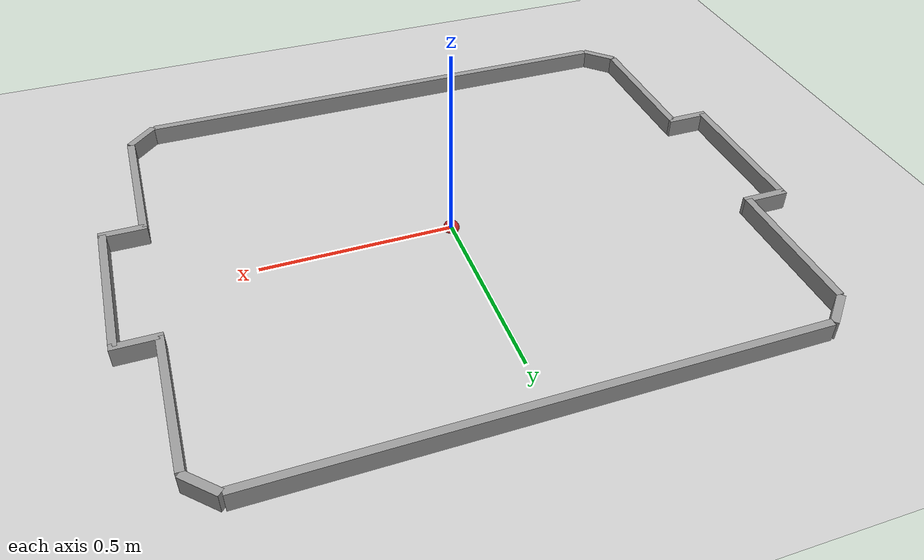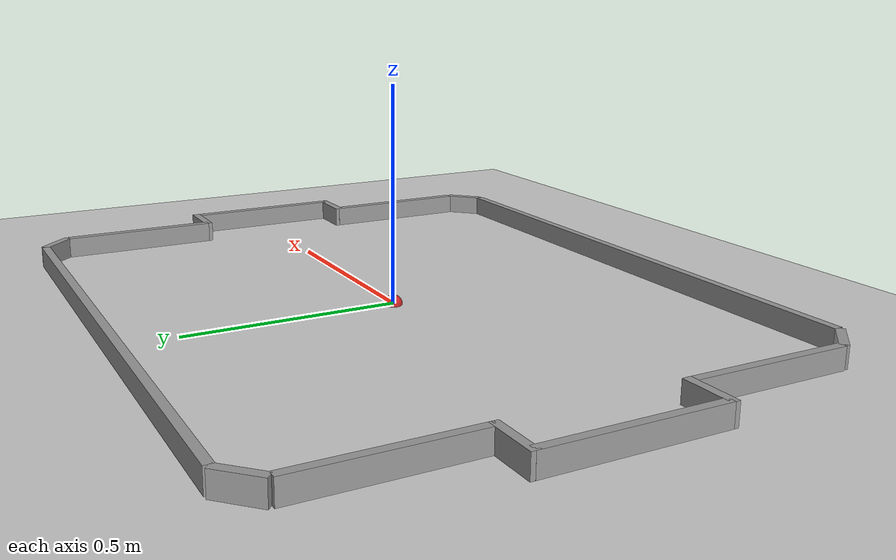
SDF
<?xml version="1.0"?>
<sdf version='1.6'>
  <world name='vsss_environment'>

    <!-- Fonte de luz -->
    <light name='sun' type='directional'>
      <cast_shadows>0</cast_shadows>
      <pose frame=''>0 0 10 0 -0 0</pose>
      <diffuse>0.8 0.8 0.8 1</diffuse>
      <specular>0.2 0.2 0.2 1</specular>

      <attenuation>
        <range>1000</range>
        <constant>0.9</constant>
        <linear>0.01</linear>
        <quadratic>0.001</quadratic>
      </attenuation>

      <direction>-0.5 0.1 -0.9</direction>
    </light>

    <!-- Interface -->
    <gui fullscreen='0'>
      <camera name='user_camera'>
        <pose frame=''>-0 -1.3 1.7 0 0.94 1.57</pose>
        <view_controller>orbit</view_controller>
        <projection_type>perspective</projection_type>
      </camera>
    </gui>

    <!-- Terreno plano -->
    <model name='ground_plane'>
      <static>1</static>
      <link name='link'>
        <collision name='collision'>
          <geometry>
            <plane>
              <normal>0 0 1</normal>
              <size>100 100</size>
            </plane>
          </geometry>
          <surface>
            <friction>
              <ode>
                <!-- A circuferencia do robo não teve alteração quando o mu do ground foi alterado de 1 para 0.375 -->
                <mu>1</mu>
                <mu2>1</mu2>
                <!-- A circunferencia não teve alteração com mu 100 e 50 baseado no simulador chines -->
              </ode>
              <torsional>
                <ode/>
              </torsional>
            </friction>
            <contact>
              <ode/>
            </contact>
            <bounce/>
          </surface>
          <max_contacts>10</max_contacts>
        </collision>
        <visual name='visual'>
          <cast_shadows>0</cast_shadows>
          <geometry>
            <plane>
              <normal>0 0 1</normal>
              <size>100 100</size>
            </plane>
          </geometry>
          <material>
            <script>
              <uri>file://media/materials/scripts/gazebo.material</uri>
              <name>Gazebo/Gray</name>
            </script>
          </material>
        </visual>
        <self_collide>0</self_collide>
        <enable_wind>0</enable_wind>
        <kinematic>0</kinematic>
      </link>
    </model>

    <gravity>0 0 -9.8</gravity>
    <magnetic_field>6e-06 2.3e-05 -4.2e-05</magnetic_field>
    <atmosphere type='adiabatic'/>

    <physics name='default_physics' default='0' type='ode'>
      <max_step_size>0.005</max_step_size>
      <real_time_factor>1</real_time_factor>
      <real_time_update_rate>200</real_time_update_rate>
    </physics>

    <scene>
      <ambient>0.4 0.4 0.4 1</ambient>
      <background>0.7 0.7 0.7 1</background>
      <shadows>0</shadows>
    </scene>

    <spherical_coordinates>
      <surface_model>EARTH_WGS84</surface_model>
      <latitude_deg>0</latitude_deg>
      <longitude_deg>0</longitude_deg>
      <elevation>0</elevation>
      <heading_deg>0</heading_deg>
    </spherical_coordinates>

    <!-- RoboCup 2015 MSL Field -->

    <!-- IEEE Very Small Size Soccer Field -->
    <include>
        <pose>0 0 0 0 0 0</pose>
        <uri>model://vsss_field</uri>
        <name>field_walls</name>
        <static>true</static>
    </include>

    <!-- IEEE Very Small Size Soccer Ball -->
    <include>
        <pose>0 0 0 0 0 0</pose>
        <uri>model://vsss_ball</uri>
        <name>ball</name>
        <static>false</static>
    </include>

  </world>
</sdf>

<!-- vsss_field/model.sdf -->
<sdf version='1.6'>
  <model name='field_walls'>
    <link name='Wall_2'>
      <pose frame=''>-0.8 -0.2 0 0 -0 0</pose>
      <self_collide>0</self_collide>
      <enable_wind>0</enable_wind>
      <kinematic>0</kinematic>
      <gravity>1</gravity>
      <inertial>
        <mass>1</mass>
        <pose frame=''>0 0 0 0 -0 0</pose>
        <inertia>
          <ixx>1</ixx>
          <ixy>0</ixy>
          <ixz>0</ixz>
          <iyy>1</iyy>
          <iyz>0</iyz>
          <izz>1</izz>
        </inertia>
      </inertial>
      <visual name='Wall_2_Visual'>
        <pose frame=''>0 0 0.025 0 -0 0</pose>
        <geometry>
          <box>
            <size>0.119741 0.02 0.05</size>
          </box>
        </geometry>
        <material>
          <script>
            <uri>file://media/materials/scripts/gazebo.material</uri>
            <name>Gazebo/Grey</name>
          </script>
          <ambient>1 1 1 1</ambient>
          <shader type='vertex'>
            <normal_map>__default__</normal_map>
          </shader>
          <diffuse>0.7 0.7 0.7 1</diffuse>
          <specular>0.01 0.01 0.01 1</specular>
          <emissive>0 0 0 1</emissive>
        </material>
        <meta>
          <layer>0</layer>
        </meta>
        <transparency>0</transparency>
        <cast_shadows>1</cast_shadows>
      </visual>
      <collision name='Wall_2_Collision'>
        <laser_retro>0</laser_retro>
        <max_contacts>10</max_contacts>
        <pose frame=''>0 0 0.025 0 -0 0</pose>
        <geometry>
          <box>
            <size>0.119741 0.02 0.05</size>
          </box>
        </geometry>
        <surface>
          <friction>
            <ode>
              <mu>0.375</mu>
              <mu2>0.375</mu2>
              <fdir1>0 0 0</fdir1>
              <slip1>0</slip1>
              <slip2>0</slip2>
            </ode>
            <torsional>
              <coefficient>1</coefficient>
              <patch_radius>0</patch_radius>
              <surface_radius>0</surface_radius>
              <use_patch_radius>1</use_patch_radius>
              <ode>
                <slip>0</slip>
              </ode>
            </torsional>
          </friction>
          <bounce>
            <restitution_coefficient>0</restitution_coefficient>
            <threshold>1e+06</threshold>
          </bounce>
          <contact>
            <collide_without_contact>0</collide_without_contact>
            <collide_without_contact_bitmask>1</collide_without_contact_bitmask>
            <collide_bitmask>1</collide_bitmask>
            <ode>
              <soft_cfm>0</soft_cfm>
              <soft_erp>0.2</soft_erp>
              <kp>1e+13</kp>
              <kd>1</kd>
              <max_vel>0.01</max_vel>
              <min_depth>0</min_depth>
            </ode>
            <bullet>
              <split_impulse>1</split_impulse>
              <split_impulse_penetration_threshold>-0.01</split_impulse_penetration_threshold>
              <soft_cfm>0</soft_cfm>
              <soft_erp>0.2</soft_erp>
              <kp>1e+13</kp>
              <kd>1</kd>
            </bullet>
          </contact>
        </surface>
      </collision>
    </link>
    <link name='Wall_1'>
      <pose frame=''>-0.85 0 0 0 0 -1.5708</pose>
      <self_collide>0</self_collide>
      <enable_wind>0</enable_wind>
      <kinematic>0</kinematic>
      <gravity>1</gravity>
      <inertial>
        <mass>1</mass>
        <pose frame=''>0 0 0 0 -0 0</pose>
        <inertia>
          <ixx>1</ixx>
          <ixy>0</ixy>
          <ixz>0</ixz>
          <iyy>1</iyy>
          <iyz>0</iyz>
          <izz>1</izz>
        </inertia>
      </inertial>
      <visual name='Wall_1_Visual'>
        <pose frame=''>0 0 0.025 0 -0 0</pose>
        <geometry>
          <box>
            <size>0.4 0.02 0.05</size>
          </box>
        </geometry>
        <material>
          <script>
            <uri>file://media/materials/scripts/gazebo.material</uri>
            <name>Gazebo/Grey</name>
          </script>
          <ambient>1 1 1 1</ambient>
          <shader type='vertex'>
            <normal_map>__default__</normal_map>
          </shader>
          <diffuse>0.7 0.7 0.7 1</diffuse>
          <specular>0.01 0.01 0.01 1</specular>
          <emissive>0 0 0 1</emissive>
        </material>
        <meta>
          <layer>0</layer>
        </meta>
        <transparency>0</transparency>
        <cast_shadows>1</cast_shadows>
      </visual>
      <collision name='Wall_1_Collision'>
        <laser_retro>0</laser_retro>
        <max_contacts>10</max_contacts>
        <pose frame=''>0 0 0.025 0 -0 0</pose>
        <geometry>
          <box>
            <size>0.4 0.02 0.05</size>
          </box>
        </geometry>
        <surface>
          <friction>
            <ode>
              <mu>0.375</mu>
              <mu2>0.375</mu2>
              <fdir1>0 0 0</fdir1>
              <slip1>0</slip1>
              <slip2>0</slip2>
            </ode>
            <torsional>
              <coefficient>1</coefficient>
              <patch_radius>0</patch_radius>
              <surface_radius>0</surface_radius>
              <use_patch_radius>1</use_patch_radius>
              <ode>
                <slip>0</slip>
              </ode>
            </torsional>
          </friction>
          <bounce>
            <restitution_coefficient>0</restitution_coefficient>
            <threshold>1e+06</threshold>
          </bounce>
          <contact>
            <collide_without_contact>0</collide_without_contact>
            <collide_without_contact_bitmask>1</collide_without_contact_bitmask>
            <collide_bitmask>1</collide_bitmask>
            <ode>
              <soft_cfm>0</soft_cfm>
              <soft_erp>0.2</soft_erp>
              <kp>1e+13</kp>
              <kd>1</kd>
              <max_vel>0.01</max_vel>
              <min_depth>0</min_depth>
            </ode>
            <bullet>
              <split_impulse>1</split_impulse>
              <split_impulse_penetration_threshold>-0.01</split_impulse_penetration_threshold>
              <soft_cfm>0</soft_cfm>
              <soft_erp>0.2</soft_erp>
              <kp>1e+13</kp>
              <kd>1</kd>
            </bullet>
          </contact>
        </surface>
      </collision>
    </link>
    <link name='Wall_10'>
      <pose frame=''>0.8 0.2 0 0 -0 3.14159</pose>
      <self_collide>0</self_collide>
      <enable_wind>0</enable_wind>
      <kinematic>0</kinematic>
      <gravity>1</gravity>
      <inertial>
        <mass>1</mass>
        <pose frame=''>0 0 0 0 -0 0</pose>
        <inertia>
          <ixx>1</ixx>
          <ixy>0</ixy>
          <ixz>0</ixz>
          <iyy>1</iyy>
          <iyz>0</iyz>
          <izz>1</izz>
        </inertia>
      </inertial>
      <visual name='Wall_10_Visual'>
        <pose frame=''>0 0 0.025 0 -0 0</pose>
        <geometry>
          <box>
            <size>0.119741 0.02 0.05</size>
          </box>
        </geometry>
        <material>
          <script>
            <uri>file://media/materials/scripts/gazebo.material</uri>
            <name>Gazebo/Grey</name>
          </script>
          <ambient>1 1 1 1</ambient>
          <shader type='vertex'>
            <normal_map>__default__</normal_map>
          </shader>
          <diffuse>0.7 0.7 0.7 1</diffuse>
          <specular>0.01 0.01 0.01 1</specular>
          <emissive>0 0 0 1</emissive>
        </material>
        <meta>
          <layer>0</layer>
        </meta>
        <transparency>0</transparency>
        <cast_shadows>1</cast_shadows>
      </visual>
      <collision name='Wall_10_Collision'>
        <laser_retro>0</laser_retro>
        <max_contacts>10</max_contacts>
        <pose frame=''>0 0 0.025 0 -0 0</pose>
        <geometry>
          <box>
            <size>0.119741 0.02 0.05</size>
          </box>
        </geometry>
        <surface>
          <friction>
            <ode>
              <mu>0.375</mu>
              <mu2>0.375</mu2>
              <fdir1>0 0 0</fdir1>
              <slip1>0</slip1>
              <slip2>0</slip2>
            </ode>
            <torsional>
              <coefficient>1</coefficient>
              <patch_radius>0</patch_radius>
              <surface_radius>0</surface_radius>
              <use_patch_radius>1</use_patch_radius>
              <ode>
                <slip>0</slip>
              </ode>
            </torsional>
          </friction>
          <bounce>
            <restitution_coefficient>0</restitution_coefficient>
            <threshold>1e+06</threshold>
          </bounce>
          <contact>
            <collide_without_contact>0</collide_without_contact>
            <collide_without_contact_bitmask>1</collide_without_contact_bitmask>
            <collide_bitmask>1</collide_bitmask>
            <ode>
              <soft_cfm>0</soft_cfm>
              <soft_erp>0.2</soft_erp>
              <kp>1e+13</kp>
              <kd>1</kd>
              <max_vel>0.01</max_vel>
              <min_depth>0</min_depth>
            </ode>
            <bullet>
              <split_impulse>1</split_impulse>
              <split_impulse_penetration_threshold>-0.01</split_impulse_penetration_threshold>
              <soft_cfm>0</soft_cfm>
              <soft_erp>0.2</soft_erp>
              <kp>1e+13</kp>
              <kd>1</kd>
            </bullet>
          </contact>
        </surface>
      </collision>
    </link>
    <link name='Wall_11'>
      <pose frame=''>0.75 0.39 0 0 -0 1.5708</pose>
      <self_collide>0</self_collide>
      <enable_wind>0</enable_wind>
      <kinematic>0</kinematic>
      <gravity>1</gravity>
      <inertial>
        <mass>1</mass>
        <pose frame=''>0 0 0 0 -0 0</pose>
        <inertia>
          <ixx>1</ixx>
          <ixy>0</ixy>
          <ixz>0</ixz>
          <iyy>1</iyy>
          <iyz>0</iyz>
          <izz>1</izz>
        </inertia>
      </inertial>
      <visual name='Wall_11_Visual'>
        <pose frame=''>0 0 0.025 0 -0 0</pose>
        <geometry>
          <box>
            <size>0.38 0.02 0.05</size>
          </box>
        </geometry>
        <material>
          <script>
            <uri>file://media/materials/scripts/gazebo.material</uri>
            <name>Gazebo/Grey</name>
          </script>
          <ambient>1 1 1 1</ambient>
          <shader type='vertex'>
            <normal_map>__default__</normal_map>
          </shader>
          <diffuse>0.7 0.7 0.7 1</diffuse>
          <specular>0.01 0.01 0.01 1</specular>
          <emissive>0 0 0 1</emissive>
        </material>
        <meta>
          <layer>0</layer>
        </meta>
        <transparency>0</transparency>
        <cast_shadows>1</cast_shadows>
      </visual>
      <collision name='Wall_11_Collision'>
        <laser_retro>0</laser_retro>
        <max_contacts>10</max_contacts>
        <pose frame=''>0 0 0.025 0 -0 0</pose>
        <geometry>
          <box>
            <size>0.38 0.02 0.05</size>
          </box>
        </geometry>
        <surface>
          <friction>
            <ode>
              <mu>0.375</mu>
              <mu2>0.375</mu2>
              <fdir1>0 0 0</fdir1>
              <slip1>0</slip1>
              <slip2>0</slip2>
            </ode>
            <torsional>
              <coefficient>1</coefficient>
              <patch_radius>0</patch_radius>
              <surface_radius>0</surface_radius>
              <use_patch_radius>1</use_patch_radius>
              <ode>
                <slip>0</slip>
              </ode>
            </torsional>
          </friction>
          <bounce>
            <restitution_coefficient>0</restitution_coefficient>
            <threshold>1e+06</threshold>
          </bounce>
          <contact>
            <collide_without_contact>0</collide_without_contact>
            <collide_without_contact_bitmask>1</collide_without_contact_bitmask>
            <collide_bitmask>1</collide_bitmask>
            <ode>
              <soft_cfm>0</soft_cfm>
              <soft_erp>0.2</soft_erp>
              <kp>1e+13</kp>
              <kd>1</kd>
              <max_vel>0.01</max_vel>
              <min_depth>0</min_depth>
            </ode>
            <bullet>
              <split_impulse>1</split_impulse>
              <split_impulse_penetration_threshold>-0.01</split_impulse_penetration_threshold>
              <soft_cfm>0</soft_cfm>
              <soft_erp>0.2</soft_erp>
              <kp>1e+13</kp>
              <kd>1</kd>
            </bullet>
          </contact>
        </surface>
      </collision>
    </link>
    <link name='Wall_12'>
      <pose frame=''>0.716963 0.616934 0 0 -0 2.35729</pose>
      <self_collide>0</self_collide>
      <enable_wind>0</enable_wind>
      <kinematic>0</kinematic>
      <gravity>1</gravity>
      <inertial>
        <mass>1</mass>
        <pose frame=''>0 0 0 0 -0 0</pose>
        <inertia>
          <ixx>1</ixx>
          <ixy>0</ixy>
          <ixz>0</ixz>
          <iyy>1</iyy>
          <iyz>0</iyz>
          <izz>1</izz>
        </inertia>
      </inertial>
      <visual name='Wall_12_Visual'>
        <pose frame=''>0 0 0.025 0 -0 0</pose>
        <geometry>
          <box>
            <size>0.098995 0.02 0.05</size>
          </box>
        </geometry>
        <material>
          <script>
            <uri>file://media/materials/scripts/gazebo.material</uri>
            <name>Gazebo/Grey</name>
          </script>
          <ambient>1 1 1 1</ambient>
          <shader type='vertex'>
            <normal_map>__default__</normal_map>
          </shader>
          <diffuse>0.7 0.7 0.7 1</diffuse>
          <specular>0.01 0.01 0.01 1</specular>
          <emissive>0 0 0 1</emissive>
        </material>
        <meta>
          <layer>0</layer>
        </meta>
        <transparency>0</transparency>
        <cast_shadows>1</cast_shadows>
      </visual>
      <collision name='Wall_12_Collision'>
        <laser_retro>0</laser_retro>
        <max_contacts>10</max_contacts>
        <pose frame=''>0 0 0.025 0 -0 0</pose>
        <geometry>
          <box>
            <size>0.098995 0.02 0.05</size>
          </box>
        </geometry>
        <surface>
          <friction>
            <ode>
              <mu>0.375</mu>
              <mu2>0.375</mu2>
              <fdir1>0 0 0</fdir1>
              <slip1>0</slip1>
              <slip2>0</slip2>
            </ode>
            <torsional>
              <coefficient>1</coefficient>
              <patch_radius>0</patch_radius>
              <surface_radius>0</surface_radius>
              <use_patch_radius>1</use_patch_radius>
              <ode>
                <slip>0</slip>
              </ode>
            </torsional>
          </friction>
          <bounce>
            <restitution_coefficient>0</restitution_coefficient>
            <threshold>1e+06</threshold>
          </bounce>
          <contact>
            <collide_without_contact>0</collide_without_contact>
            <collide_without_contact_bitmask>1</collide_without_contact_bitmask>
            <collide_bitmask>1</collide_bitmask>
            <ode>
              <soft_cfm>0</soft_cfm>
              <soft_erp>0.2</soft_erp>
              <kp>1e+13</kp>
              <kd>1</kd>
              <max_vel>0.01</max_vel>
              <min_depth>0</min_depth>
            </ode>
            <bullet>
              <split_impulse>1</split_impulse>
              <split_impulse_penetration_threshold>-0.01</split_impulse_penetration_threshold>
              <soft_cfm>0</soft_cfm>
              <soft_erp>0.2</soft_erp>
              <kp>1e+13</kp>
              <kd>1</kd>
            </bullet>
          </contact>
        </surface>
      </collision>
    </link>
    <link name='Wall_13'>
      <pose frame=''>0 0.65 0 0 -0 3.14159</pose>
      <self_collide>0</self_collide>
      <enable_wind>0</enable_wind>
      <kinematic>0</kinematic>
      <gravity>1</gravity>
      <inertial>
        <mass>1</mass>
        <pose frame=''>0 0 0 0 -0 0</pose>
        <inertia>
          <ixx>1</ixx>
          <ixy>0</ixy>
          <ixz>0</ixz>
          <iyy>1</iyy>
          <iyz>0</iyz>
          <izz>1</izz>
        </inertia>
      </inertial>
      <visual name='Wall_13_Visual'>
        <pose frame=''>0 0 0.025 0 -0 0</pose>
        <geometry>
          <box>
            <size>1.36 0.02 0.05</size>
          </box>
        </geometry>
        <material>
          <script>
            <uri>file://media/materials/scripts/gazebo.material</uri>
            <name>Gazebo/Grey</name>
          </script>
          <ambient>1 1 1 1</ambient>
          <shader type='vertex'>
            <normal_map>__default__</normal_map>
          </shader>
          <diffuse>0.7 0.7 0.7 1</diffuse>
          <specular>0.01 0.01 0.01 1</specular>
          <emissive>0 0 0 1</emissive>
        </material>
        <meta>
          <layer>0</layer>
        </meta>
        <transparency>0</transparency>
        <cast_shadows>1</cast_shadows>
      </visual>
      <collision name='Wall_13_Collision'>
        <laser_retro>0</laser_retro>
        <max_contacts>10</max_contacts>
        <pose frame=''>0 0 0.025 0 -0 0</pose>
        <geometry>
          <box>
            <size>1.36 0.02 0.05</size>
          </box>
        </geometry>
        <surface>
          <friction>
            <ode>
              <mu>0.375</mu>
              <mu2>0.375</mu2>
              <fdir1>0 0 0</fdir1>
              <slip1>0</slip1>
              <slip2>0</slip2>
            </ode>
            <torsional>
              <coefficient>1</coefficient>
              <patch_radius>0</patch_radius>
              <surface_radius>0</surface_radius>
              <use_patch_radius>1</use_patch_radius>
              <ode>
                <slip>0</slip>
              </ode>
            </torsional>
          </friction>
          <bounce>
            <restitution_coefficient>0</restitution_coefficient>
            <threshold>1e+06</threshold>
          </bounce>
          <contact>
            <collide_without_contact>0</collide_without_contact>
            <collide_without_contact_bitmask>1</collide_without_contact_bitmask>
            <collide_bitmask>1</collide_bitmask>
            <ode>
              <soft_cfm>0</soft_cfm>
              <soft_erp>0.2</soft_erp>
              <kp>1e+13</kp>
              <kd>1</kd>
              <max_vel>0.01</max_vel>
              <min_depth>0</min_depth>
            </ode>
            <bullet>
              <split_impulse>1</split_impulse>
              <split_impulse_penetration_threshold>-0.01</split_impulse_penetration_threshold>
              <soft_cfm>0</soft_cfm>
              <soft_erp>0.2</soft_erp>
              <kp>1e+13</kp>
              <kd>1</kd>
            </bullet>
          </contact>
        </surface>
      </collision>
    </link>
    <link name='Wall_14'>
      <pose frame=''>-0.716963 0.616934 0 0 0 -2.35729</pose>
      <self_collide>0</self_collide>
      <enable_wind>0</enable_wind>
      <kinematic>0</kinematic>
      <gravity>1</gravity>
      <inertial>
        <mass>1</mass>
        <pose frame=''>0 0 0 0 -0 0</pose>
        <inertia>
          <ixx>1</ixx>
          <ixy>0</ixy>
          <ixz>0</ixz>
          <iyy>1</iyy>
          <iyz>0</iyz>
          <izz>1</izz>
        </inertia>
      </inertial>
      <visual name='Wall_14_Visual'>
        <pose frame=''>0 0 0.025 0 -0 0</pose>
        <geometry>
          <box>
            <size>0.098995 0.02 0.05</size>
          </box>
        </geometry>
        <material>
          <script>
            <uri>file://media/materials/scripts/gazebo.material</uri>
            <name>Gazebo/Grey</name>
          </script>
          <ambient>1 1 1 1</ambient>
          <shader type='vertex'>
            <normal_map>__default__</normal_map>
          </shader>
          <diffuse>0.7 0.7 0.7 1</diffuse>
          <specular>0.01 0.01 0.01 1</specular>
          <emissive>0 0 0 1</emissive>
        </material>
        <meta>
          <layer>0</layer>
        </meta>
        <transparency>0</transparency>
        <cast_shadows>1</cast_shadows>
      </visual>
      <collision name='Wall_14_Collision'>
        <laser_retro>0</laser_retro>
        <max_contacts>10</max_contacts>
        <pose frame=''>0 0 0.025 0 -0 0</pose>
        <geometry>
          <box>
            <size>0.098995 0.02 0.05</size>
          </box>
        </geometry>
        <surface>
          <friction>
            <ode>
              <mu>0.375</mu>
              <mu2>0.375</mu2>
              <fdir1>0 0 0</fdir1>
              <slip1>0</slip1>
              <slip2>0</slip2>
            </ode>
            <torsional>
              <coefficient>1</coefficient>
              <patch_radius>0</patch_radius>
              <surface_radius>0</surface_radius>
              <use_patch_radius>1</use_patch_radius>
              <ode>
                <slip>0</slip>
              </ode>
            </torsional>
          </friction>
          <bounce>
            <restitution_coefficient>0</restitution_coefficient>
            <threshold>1e+06</threshold>
          </bounce>
          <contact>
            <collide_without_contact>0</collide_without_contact>
            <collide_without_contact_bitmask>1</collide_without_contact_bitmask>
            <collide_bitmask>1</collide_bitmask>
            <ode>
              <soft_cfm>0</soft_cfm>
              <soft_erp>0.2</soft_erp>
              <kp>1e+13</kp>
              <kd>1</kd>
              <max_vel>0.01</max_vel>
              <min_depth>0</min_depth>
            </ode>
            <bullet>
              <split_impulse>1</split_impulse>
              <split_impulse_penetration_threshold>-0.01</split_impulse_penetration_threshold>
              <soft_cfm>0</soft_cfm>
              <soft_erp>0.2</soft_erp>
              <kp>1e+13</kp>
              <kd>1</kd>
            </bullet>
          </contact>
        </surface>
      </collision>
    </link>
    <link name='Wall_15'>
      <pose frame=''>-0.75 0.39 0 0 0 -1.5708</pose>
      <self_collide>0</self_collide>
      <enable_wind>0</enable_wind>
      <kinematic>0</kinematic>
      <gravity>1</gravity>
      <inertial>
        <mass>1</mass>
        <pose frame=''>0 0 0 0 -0 0</pose>
        <inertia>
          <ixx>1</ixx>
          <ixy>0</ixy>
          <ixz>0</ixz>
          <iyy>1</iyy>
          <iyz>0</iyz>
          <izz>1</izz>
        </inertia>
      </inertial>
      <visual name='Wall_15_Visual'>
        <pose frame=''>0 0 0.025 0 -0 0</pose>
        <geometry>
          <box>
            <size>0.38 0.02 0.05</size>
          </box>
        </geometry>
        <material>
          <script>
            <uri>file://media/materials/scripts/gazebo.material</uri>
            <name>Gazebo/Grey</name>
          </script>
          <ambient>1 1 1 1</ambient>
          <shader type='vertex'>
            <normal_map>__default__</normal_map>
          </shader>
          <diffuse>0.7 0.7 0.7 1</diffuse>
          <specular>0.01 0.01 0.01 1</specular>
          <emissive>0 0 0 1</emissive>
        </material>
        <meta>
          <layer>0</layer>
        </meta>
        <transparency>0</transparency>
        <cast_shadows>1</cast_shadows>
      </visual>
      <collision name='Wall_15_Collision'>
        <laser_retro>0</laser_retro>
        <max_contacts>10</max_contacts>
        <pose frame=''>0 0 0.025 0 -0 0</pose>
        <geometry>
          <box>
            <size>0.38 0.02 0.05</size>
          </box>
        </geometry>
        <surface>
          <friction>
            <ode>
              <mu>0.375</mu>
              <mu2>0.375</mu2>
              <fdir1>0 0 0</fdir1>
              <slip1>0</slip1>
              <slip2>0</slip2>
            </ode>
            <torsional>
              <coefficient>1</coefficient>
              <patch_radius>0</patch_radius>
              <surface_radius>0</surface_radius>
              <use_patch_radius>1</use_patch_radius>
              <ode>
                <slip>0</slip>
              </ode>
            </torsional>
          </friction>
          <bounce>
            <restitution_coefficient>0</restitution_coefficient>
            <threshold>1e+06</threshold>
          </bounce>
          <contact>
            <collide_without_contact>0</collide_without_contact>
            <collide_without_contact_bitmask>1</collide_without_contact_bitmask>
            <collide_bitmask>1</collide_bitmask>
            <ode>
              <soft_cfm>0</soft_cfm>
              <soft_erp>0.2</soft_erp>
              <kp>1e+13</kp>
              <kd>1</kd>
              <max_vel>0.01</max_vel>
              <min_depth>0</min_depth>
            </ode>
            <bullet>
              <split_impulse>1</split_impulse>
              <split_impulse_penetration_threshold>-0.01</split_impulse_penetration_threshold>
              <soft_cfm>0</soft_cfm>
              <soft_erp>0.2</soft_erp>
              <kp>1e+13</kp>
              <kd>1</kd>
            </bullet>
          </contact>
        </surface>
      </collision>
    </link>
    <link name='Wall_16'>
      <pose frame=''>-0.8 0.2 0 0 -0 3.14159</pose>
      <self_collide>0</self_collide>
      <enable_wind>0</enable_wind>
      <kinematic>0</kinematic>
      <gravity>1</gravity>
      <inertial>
        <mass>1</mass>
        <pose frame=''>0 0 0 0 -0 0</pose>
        <inertia>
          <ixx>1</ixx>
          <ixy>0</ixy>
          <ixz>0</ixz>
          <iyy>1</iyy>
          <iyz>0</iyz>
          <izz>1</izz>
        </inertia>
      </inertial>
      <visual name='Wall_16_Visual'>
        <pose frame=''>0 0 0.025 0 -0 0</pose>
        <geometry>
          <box>
            <size>0.119741 0.02 0.05</size>
          </box>
        </geometry>
        <material>
          <script>
            <uri>file://media/materials/scripts/gazebo.material</uri>
            <name>Gazebo/Grey</name>
          </script>
          <ambient>1 1 1 1</ambient>
          <shader type='vertex'>
            <normal_map>__default__</normal_map>
          </shader>
          <diffuse>0.7 0.7 0.7 1</diffuse>
          <specular>0.01 0.01 0.01 1</specular>
          <emissive>0 0 0 1</emissive>
        </material>
        <meta>
          <layer>0</layer>
        </meta>
        <transparency>0</transparency>
        <cast_shadows>1</cast_shadows>
      </visual>
      <collision name='Wall_16_Collision'>
        <laser_retro>0</laser_retro>
        <max_contacts>10</max_contacts>
        <pose frame=''>0 0 0.025 0 -0 0</pose>
        <geometry>
          <box>
            <size>0.119741 0.02 0.05</size>
          </box>
        </geometry>
        <surface>
          <friction>
            <ode>
              <mu>0.375</mu>
              <mu2>0.375</mu2>
              <fdir1>0 0 0</fdir1>
              <slip1>0</slip1>
              <slip2>0</slip2>
            </ode>
            <torsional>
              <coefficient>1</coefficient>
              <patch_radius>0</patch_radius>
              <surface_radius>0</surface_radius>
              <use_patch_radius>1</use_patch_radius>
              <ode>
                <slip>0</slip>
              </ode>
            </torsional>
          </friction>
          <bounce>
            <restitution_coefficient>0</restitution_coefficient>
            <threshold>1e+06</threshold>
          </bounce>
          <contact>
            <collide_without_contact>0</collide_without_contact>
            <collide_without_contact_bitmask>1</collide_without_contact_bitmask>
            <collide_bitmask>1</collide_bitmask>
            <ode>
              <soft_cfm>0</soft_cfm>
              <soft_erp>0.2</soft_erp>
              <kp>1e+13</kp>
              <kd>1</kd>
              <max_vel>0.01</max_vel>
              <min_depth>0</min_depth>
            </ode>
            <bullet>
              <split_impulse>1</split_impulse>
              <split_impulse_penetration_threshold>-0.01</split_impulse_penetration_threshold>
              <soft_cfm>0</soft_cfm>
              <soft_erp>0.2</soft_erp>
              <kp>1e+13</kp>
              <kd>1</kd>
            </bullet>
          </contact>
        </surface>
      </collision>
    </link>
    <link name='Wall_3'>
      <pose frame=''>-0.75 -0.39 0 0 0 -1.5708</pose>
      <self_collide>0</self_collide>
      <enable_wind>0</enable_wind>
      <kinematic>0</kinematic>
      <gravity>1</gravity>
      <inertial>
        <mass>1</mass>
        <pose frame=''>0 0 0 0 -0 0</pose>
        <inertia>
          <ixx>1</ixx>
          <ixy>0</ixy>
          <ixz>0</ixz>
          <iyy>1</iyy>
          <iyz>0</iyz>
          <izz>1</izz>
        </inertia>
      </inertial>
      <visual name='Wall_3_Visual'>
        <pose frame=''>0 0 0.025 0 -0 0</pose>
        <geometry>
          <box>
            <size>0.38 0.02 0.05</size>
          </box>
        </geometry>
        <material>
          <script>
            <uri>file://media/materials/scripts/gazebo.material</uri>
            <name>Gazebo/Grey</name>
          </script>
          <ambient>1 1 1 1</ambient>
          <shader type='vertex'>
            <normal_map>__default__</normal_map>
          </shader>
          <diffuse>0.7 0.7 0.7 1</diffuse>
          <specular>0.01 0.01 0.01 1</specular>
          <emissive>0 0 0 1</emissive>
        </material>
        <meta>
          <layer>0</layer>
        </meta>
        <transparency>0</transparency>
        <cast_shadows>1</cast_shadows>
      </visual>
      <collision name='Wall_3_Collision'>
        <laser_retro>0</laser_retro>
        <max_contacts>10</max_contacts>
        <pose frame=''>0 0 0.025 0 -0 0</pose>
        <geometry>
          <box>
            <size>0.38 0.02 0.05</size>
          </box>
        </geometry>
        <surface>
          <friction>
            <ode>
              <mu>0.375</mu>
              <mu2>0.375</mu2>
              <fdir1>0 0 0</fdir1>
              <slip1>0</slip1>
              <slip2>0</slip2>
            </ode>
            <torsional>
              <coefficient>1</coefficient>
              <patch_radius>0</patch_radius>
              <surface_radius>0</surface_radius>
              <use_patch_radius>1</use_patch_radius>
              <ode>
                <slip>0</slip>
              </ode>
            </torsional>
          </friction>
          <bounce>
            <restitution_coefficient>0</restitution_coefficient>
            <threshold>1e+06</threshold>
          </bounce>
          <contact>
            <collide_without_contact>0</collide_without_contact>
            <collide_without_contact_bitmask>1</collide_without_contact_bitmask>
            <collide_bitmask>1</collide_bitmask>
            <ode>
              <soft_cfm>0</soft_cfm>
              <soft_erp>0.2</soft_erp>
              <kp>1e+13</kp>
              <kd>1</kd>
              <max_vel>0.01</max_vel>
              <min_depth>0</min_depth>
            </ode>
            <bullet>
              <split_impulse>1</split_impulse>
              <split_impulse_penetration_threshold>-0.01</split_impulse_penetration_threshold>
              <soft_cfm>0</soft_cfm>
              <soft_erp>0.2</soft_erp>
              <kp>1e+13</kp>
              <kd>1</kd>
            </bullet>
          </contact>
        </surface>
      </collision>
    </link>
    <link name='Wall_4'>
      <pose frame=''>-0.716963 -0.616934 0 0 0 -0.78421</pose>
      <self_collide>0</self_collide>
      <enable_wind>0</enable_wind>
      <kinematic>0</kinematic>
      <gravity>1</gravity>
      <inertial>
        <mass>1</mass>
        <pose frame=''>0 0 0 0 -0 0</pose>
        <inertia>
          <ixx>1</ixx>
          <ixy>0</ixy>
          <ixz>0</ixz>
          <iyy>1</iyy>
          <iyz>0</iyz>
          <izz>1</izz>
        </inertia>
      </inertial>
      <visual name='Wall_4_Visual'>
        <pose frame=''>0 0 0.025 0 -0 0</pose>
        <geometry>
          <box>
            <size>0.098995 0.02 0.05</size>
          </box>
        </geometry>
        <material>
          <script>
            <uri>file://media/materials/scripts/gazebo.material</uri>
            <name>Gazebo/Grey</name>
          </script>
          <ambient>1 1 1 1</ambient>
          <shader type='vertex'>
            <normal_map>__default__</normal_map>
          </shader>
          <diffuse>0.7 0.7 0.7 1</diffuse>
          <specular>0.01 0.01 0.01 1</specular>
          <emissive>0 0 0 1</emissive>
        </material>
        <meta>
          <layer>0</layer>
        </meta>
        <transparency>0</transparency>
        <cast_shadows>1</cast_shadows>
      </visual>
      <collision name='Wall_4_Collision'>
        <laser_retro>0</laser_retro>
        <max_contacts>10</max_contacts>
        <pose frame=''>0 0 0.025 0 -0 0</pose>
        <geometry>
          <box>
            <size>0.098995 0.02 0.05</size>
          </box>
        </geometry>
        <surface>
          <friction>
            <ode>
              <mu>0.375</mu>
              <mu2>0.375</mu2>
              <fdir1>0 0 0</fdir1>
              <slip1>0</slip1>
              <slip2>0</slip2>
            </ode>
            <torsional>
              <coefficient>1</coefficient>
              <patch_radius>0</patch_radius>
              <surface_radius>0</surface_radius>
              <use_patch_radius>1</use_patch_radius>
              <ode>
                <slip>0</slip>
              </ode>
            </torsional>
          </friction>
          <bounce>
            <restitution_coefficient>0</restitution_coefficient>
            <threshold>1e+06</threshold>
          </bounce>
          <contact>
            <collide_without_contact>0</collide_without_contact>
            <collide_without_contact_bitmask>1</collide_without_contact_bitmask>
            <collide_bitmask>1</collide_bitmask>
            <ode>
              <soft_cfm>0</soft_cfm>
              <soft_erp>0.2</soft_erp>
              <kp>1e+13</kp>
              <kd>1</kd>
              <max_vel>0.01</max_vel>
              <min_depth>0</min_depth>
            </ode>
            <bullet>
              <split_impulse>1</split_impulse>
              <split_impulse_penetration_threshold>-0.01</split_impulse_penetration_threshold>
              <soft_cfm>0</soft_cfm>
              <soft_erp>0.2</soft_erp>
              <kp>1e+13</kp>
              <kd>1</kd>
            </bullet>
          </contact>
        </surface>
      </collision>
    </link>
    <link name='Wall_5'>
      <pose frame=''>0 -0.65 0 0 -0 0</pose>
      <self_collide>0</self_collide>
      <enable_wind>0</enable_wind>
      <kinematic>0</kinematic>
      <gravity>1</gravity>
      <inertial>
        <mass>1</mass>
        <pose frame=''>0 0 0 0 -0 0</pose>
        <inertia>
          <ixx>1</ixx>
          <ixy>0</ixy>
          <ixz>0</ixz>
          <iyy>1</iyy>
          <iyz>0</iyz>
          <izz>1</izz>
        </inertia>
      </inertial>
      <visual name='Wall_5_Visual'>
        <pose frame=''>0 0 0.025 0 -0 0</pose>
        <geometry>
          <box>
            <size>1.36 0.02 0.05</size>
          </box>
        </geometry>
        <material>
          <script>
            <uri>file://media/materials/scripts/gazebo.material</uri>
            <name>Gazebo/Grey</name>
          </script>
          <ambient>1 1 1 1</ambient>
          <shader type='vertex'>
            <normal_map>__default__</normal_map>
          </shader>
          <diffuse>0.7 0.7 0.7 1</diffuse>
          <specular>0.01 0.01 0.01 1</specular>
          <emissive>0 0 0 1</emissive>
        </material>
        <meta>
          <layer>0</layer>
        </meta>
        <transparency>0</transparency>
        <cast_shadows>1</cast_shadows>
      </visual>
      <collision name='Wall_5_Collision'>
        <laser_retro>0</laser_retro>
        <max_contacts>10</max_contacts>
        <pose frame=''>0 0 0.025 0 -0 0</pose>
        <geometry>
          <box>
            <size>1.36 0.02 0.05</size>
          </box>
        </geometry>
        <surface>
          <friction>
            <ode>
              <mu>0.375</mu>
              <mu2>0.375</mu2>
              <fdir1>0 0 0</fdir1>
              <slip1>0</slip1>
              <slip2>0</slip2>
            </ode>
            <torsional>
              <coefficient>1</coefficient>
              <patch_radius>0</patch_radius>
              <surface_radius>0</surface_radius>
              <use_patch_radius>1</use_patch_radius>
              <ode>
                <slip>0</slip>
              </ode>
            </torsional>
          </friction>
          <bounce>
            <restitution_coefficient>0</restitution_coefficient>
            <threshold>1e+06</threshold>
          </bounce>
          <contact>
            <collide_without_contact>0</collide_without_contact>
            <collide_without_contact_bitmask>1</collide_without_contact_bitmask>
            <collide_bitmask>1</collide_bitmask>
            <ode>
              <soft_cfm>0</soft_cfm>
              <soft_erp>0.2</soft_erp>
              <kp>1e+13</kp>
              <kd>1</kd>
              <max_vel>0.01</max_vel>
              <min_depth>0</min_depth>
            </ode>
            <bullet>
              <split_impulse>1</split_impulse>
              <split_impulse_penetration_threshold>-0.01</split_impulse_penetration_threshold>
              <soft_cfm>0</soft_cfm>
              <soft_erp>0.2</soft_erp>
              <kp>1e+13</kp>
              <kd>1</kd>
            </bullet>
          </contact>
        </surface>
      </collision>
    </link>
    <link name='Wall_6'>
      <pose frame=''>0.716963 -0.616934 0 0 -0 0.78421</pose>
      <self_collide>0</self_collide>
      <enable_wind>0</enable_wind>
      <kinematic>0</kinematic>
      <gravity>1</gravity>
      <inertial>
        <mass>1</mass>
        <pose frame=''>0 0 0 0 -0 0</pose>
        <inertia>
          <ixx>1</ixx>
          <ixy>0</ixy>
          <ixz>0</ixz>
          <iyy>1</iyy>
          <iyz>0</iyz>
          <izz>1</izz>
        </inertia>
      </inertial>
      <visual name='Wall_6_Visual'>
        <pose frame=''>0 0 0.025 0 -0 0</pose>
        <geometry>
          <box>
            <size>0.098995 0.02 0.05</size>
          </box>
        </geometry>
        <material>
          <script>
            <uri>file://media/materials/scripts/gazebo.material</uri>
            <name>Gazebo/Grey</name>
          </script>
          <ambient>1 1 1 1</ambient>
          <shader type='vertex'>
            <normal_map>__default__</normal_map>
          </shader>
          <diffuse>0.7 0.7 0.7 1</diffuse>
          <specular>0.01 0.01 0.01 1</specular>
          <emissive>0 0 0 1</emissive>
        </material>
        <meta>
          <layer>0</layer>
        </meta>
        <transparency>0</transparency>
        <cast_shadows>1</cast_shadows>
      </visual>
      <collision name='Wall_6_Collision'>
        <laser_retro>0</laser_retro>
        <max_contacts>10</max_contacts>
        <pose frame=''>0 0 0.025 0 -0 0</pose>
        <geometry>
          <box>
            <size>0.098995 0.02 0.05</size>
          </box>
        </geometry>
        <surface>
          <friction>
            <ode>
              <mu>0.375</mu>
              <mu2>0.375</mu2>
              <fdir1>0 0 0</fdir1>
              <slip1>0</slip1>
              <slip2>0</slip2>
            </ode>
            <torsional>
              <coefficient>1</coefficient>
              <patch_radius>0</patch_radius>
              <surface_radius>0</surface_radius>
              <use_patch_radius>1</use_patch_radius>
              <ode>
                <slip>0</slip>
              </ode>
            </torsional>
          </friction>
          <bounce>
            <restitution_coefficient>0</restitution_coefficient>
            <threshold>1e+06</threshold>
          </bounce>
          <contact>
            <collide_without_contact>0</collide_without_contact>
            <collide_without_contact_bitmask>1</collide_without_contact_bitmask>
            <collide_bitmask>1</collide_bitmask>
            <ode>
              <soft_cfm>0</soft_cfm>
              <soft_erp>0.2</soft_erp>
              <kp>1e+13</kp>
              <kd>1</kd>
              <max_vel>0.01</max_vel>
              <min_depth>0</min_depth>
            </ode>
            <bullet>
              <split_impulse>1</split_impulse>
              <split_impulse_penetration_threshold>-0.01</split_impulse_penetration_threshold>
              <soft_cfm>0</soft_cfm>
              <soft_erp>0.2</soft_erp>
              <kp>1e+13</kp>
              <kd>1</kd>
            </bullet>
          </contact>
        </surface>
      </collision>
    </link>
    <link name='Wall_7'>
      <pose frame=''>0.75 -0.39 0 0 -0 1.5708</pose>
      <self_collide>0</self_collide>
      <enable_wind>0</enable_wind>
      <kinematic>0</kinematic>
      <gravity>1</gravity>
      <inertial>
        <mass>1</mass>
        <pose frame=''>0 0 0 0 -0 0</pose>
        <inertia>
          <ixx>1</ixx>
          <ixy>0</ixy>
          <ixz>0</ixz>
          <iyy>1</iyy>
          <iyz>0</iyz>
          <izz>1</izz>
        </inertia>
      </inertial>
      <visual name='Wall_7_Visual'>
        <pose frame=''>0 0 0.025 0 -0 0</pose>
        <geometry>
          <box>
            <size>0.38 0.02 0.05</size>
          </box>
        </geometry>
        <material>
          <script>
            <uri>file://media/materials/scripts/gazebo.material</uri>
            <name>Gazebo/Grey</name>
          </script>
          <ambient>1 1 1 1</ambient>
          <shader type='vertex'>
            <normal_map>__default__</normal_map>
          </shader>
          <diffuse>0.7 0.7 0.7 1</diffuse>
          <specular>0.01 0.01 0.01 1</specular>
          <emissive>0 0 0 1</emissive>
        </material>
        <meta>
          <layer>0</layer>
        </meta>
        <transparency>0</transparency>
        <cast_shadows>1</cast_shadows>
      </visual>
      <collision name='Wall_7_Collision'>
        <laser_retro>0</laser_retro>
        <max_contacts>10</max_contacts>
        <pose frame=''>0 0 0.025 0 -0 0</pose>
        <geometry>
          <box>
            <size>0.38 0.02 0.05</size>
          </box>
        </geometry>
        <surface>
          <friction>
            <ode>
              <mu>0.375</mu>
              <mu2>0.375</mu2>
              <fdir1>0 0 0</fdir1>
              <slip1>0</slip1>
              <slip2>0</slip2>
            </ode>
            <torsional>
              <coefficient>1</coefficient>
              <patch_radius>0</patch_radius>
              <surface_radius>0</surface_radius>
              <use_patch_radius>1</use_patch_radius>
              <ode>
                <slip>0</slip>
              </ode>
            </torsional>
          </friction>
          <bounce>
            <restitution_coefficient>0</restitution_coefficient>
            <threshold>1e+06</threshold>
          </bounce>
          <contact>
            <collide_without_contact>0</collide_without_contact>
            <collide_without_contact_bitmask>1</collide_without_contact_bitmask>
            <collide_bitmask>1</collide_bitmask>
            <ode>
              <soft_cfm>0</soft_cfm>
              <soft_erp>0.2</soft_erp>
              <kp>1e+13</kp>
              <kd>1</kd>
              <max_vel>0.01</max_vel>
              <min_depth>0</min_depth>
            </ode>
            <bullet>
              <split_impulse>1</split_impulse>
              <split_impulse_penetration_threshold>-0.01</split_impulse_penetration_threshold>
              <soft_cfm>0</soft_cfm>
              <soft_erp>0.2</soft_erp>
              <kp>1e+13</kp>
              <kd>1</kd>
            </bullet>
          </contact>
        </surface>
      </collision>
    </link>
    <link name='Wall_8'>
      <pose frame=''>0.8 -0.2 0 0 -0 0</pose>
      <self_collide>0</self_collide>
      <enable_wind>0</enable_wind>
      <kinematic>0</kinematic>
      <gravity>1</gravity>
      <inertial>
        <mass>1</mass>
        <pose frame=''>0 0 0 0 -0 0</pose>
        <inertia>
          <ixx>1</ixx>
          <ixy>0</ixy>
          <ixz>0</ixz>
          <iyy>1</iyy>
          <iyz>0</iyz>
          <izz>1</izz>
        </inertia>
      </inertial>
      <visual name='Wall_8_Visual'>
        <pose frame=''>0 0 0.025 0 -0 0</pose>
        <geometry>
          <box>
            <size>0.119741 0.02 0.05</size>
          </box>
        </geometry>
        <material>
          <script>
            <uri>file://media/materials/scripts/gazebo.material</uri>
            <name>Gazebo/Grey</name>
          </script>
          <ambient>1 1 1 1</ambient>
          <shader type='vertex'>
            <normal_map>__default__</normal_map>
          </shader>
          <diffuse>0.7 0.7 0.7 1</diffuse>
          <specular>0.01 0.01 0.01 1</specular>
          <emissive>0 0 0 1</emissive>
        </material>
        <meta>
          <layer>0</layer>
        </meta>
        <transparency>0</transparency>
        <cast_shadows>1</cast_shadows>
      </visual>
      <collision name='Wall_8_Collision'>
        <laser_retro>0</laser_retro>
        <max_contacts>10</max_contacts>
        <pose frame=''>0 0 0.025 0 -0 0</pose>
        <geometry>
          <box>
            <size>0.119741 0.02 0.05</size>
          </box>
        </geometry>
        <surface>
          <friction>
            <ode>
              <mu>0.375</mu>
              <mu2>0.375</mu2>
              <fdir1>0 0 0</fdir1>
              <slip1>0</slip1>
              <slip2>0</slip2>
            </ode>
            <torsional>
              <coefficient>1</coefficient>
              <patch_radius>0</patch_radius>
              <surface_radius>0</surface_radius>
              <use_patch_radius>1</use_patch_radius>
              <ode>
                <slip>0</slip>
              </ode>
            </torsional>
          </friction>
          <bounce>
            <restitution_coefficient>0</restitution_coefficient>
            <threshold>1e+06</threshold>
          </bounce>
          <contact>
            <collide_without_contact>0</collide_without_contact>
            <collide_without_contact_bitmask>1</collide_without_contact_bitmask>
            <collide_bitmask>1</collide_bitmask>
            <ode>
              <soft_cfm>0</soft_cfm>
              <soft_erp>0.2</soft_erp>
              <kp>1e+13</kp>
              <kd>1</kd>
              <max_vel>0.01</max_vel>
              <min_depth>0</min_depth>
            </ode>
            <bullet>
              <split_impulse>1</split_impulse>
              <split_impulse_penetration_threshold>-0.01</split_impulse_penetration_threshold>
              <soft_cfm>0</soft_cfm>
              <soft_erp>0.2</soft_erp>
              <kp>1e+13</kp>
              <kd>1</kd>
            </bullet>
          </contact>
        </surface>
      </collision>
    </link>
    <link name='Wall_9'>
      <pose frame=''>0.85 0 0 0 -0 1.5708</pose>
      <self_collide>0</self_collide>
      <enable_wind>0</enable_wind>
      <kinematic>0</kinematic>
      <gravity>1</gravity>
      <inertial>
        <mass>1</mass>
        <pose frame=''>0 0 0 0 -0 0</pose>
        <inertia>
          <ixx>1</ixx>
          <ixy>0</ixy>
          <ixz>0</ixz>
          <iyy>1</iyy>
          <iyz>0</iyz>
          <izz>1</izz>
        </inertia>
      </inertial>
      <visual name='Wall_9_Visual'>
        <pose frame=''>0 0 0.025 0 -0 0</pose>
        <geometry>
          <box>
            <size>0.4 0.02 0.05</size>
          </box>
        </geometry>
        <material>
          <script>
            <uri>file://media/materials/scripts/gazebo.material</uri>
            <name>Gazebo/Grey</name>
          </script>
          <ambient>1 1 1 1</ambient>
          <shader type='vertex'>
            <normal_map>__default__</normal_map>
          </shader>
          <diffuse>0.7 0.7 0.7 1</diffuse>
          <specular>0.01 0.01 0.01 1</specular>
          <emissive>0 0 0 1</emissive>
        </material>
        <meta>
          <layer>0</layer>
        </meta>
        <transparency>0</transparency>
        <cast_shadows>1</cast_shadows>
      </visual>
      <collision name='Wall_9_Collision'>
        <laser_retro>0</laser_retro>
        <max_contacts>10</max_contacts>
        <pose frame=''>0 0 0.025 0 -0 0</pose>
        <geometry>
          <box>
            <size>0.4 0.02 0.05</size>
          </box>
        </geometry>
        <surface>
          <friction>
            <ode>
              <mu>0.375</mu>
              <mu2>0.375</mu2>
              <fdir1>0 0 0</fdir1>
              <slip1>0</slip1>
              <slip2>0</slip2>
            </ode>
            <torsional>
              <coefficient>1</coefficient>
              <patch_radius>0</patch_radius>
              <surface_radius>0</surface_radius>
              <use_patch_radius>1</use_patch_radius>
              <ode>
                <slip>0</slip>
              </ode>
            </torsional>
          </friction>
          <bounce>
            <restitution_coefficient>0</restitution_coefficient>
            <threshold>1e+06</threshold>
          </bounce>
          <contact>
            <collide_without_contact>0</collide_without_contact>
            <collide_without_contact_bitmask>1</collide_without_contact_bitmask>
            <collide_bitmask>1</collide_bitmask>
            <ode>
              <soft_cfm>0</soft_cfm>
              <soft_erp>0.2</soft_erp>
              <kp>1e+13</kp>
              <kd>1</kd>
              <max_vel>0.01</max_vel>
              <min_depth>0</min_depth>
            </ode>
            <bullet>
              <split_impulse>1</split_impulse>
              <split_impulse_penetration_threshold>-0.01</split_impulse_penetration_threshold>
              <soft_cfm>0</soft_cfm>
              <soft_erp>0.2</soft_erp>
              <kp>1e+13</kp>
              <kd>1</kd>
            </bullet>
          </contact>
        </surface>
      </collision>
    </link>
    <static>1</static>
    <allow_auto_disable>1</allow_auto_disable>
  </model>
</sdf>

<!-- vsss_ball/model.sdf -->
<sdf version='1.6'>

  <model name='vsss_ball'>
    <link name='ball'>

      <pose frame=''>0 0 0 0 0 0</pose>
      <self_collide>0</self_collide>
      <enable_wind>0</enable_wind>
      <kinematic>0</kinematic>
      <gravity>1</gravity>

      <inertial>
        <mass>0.04593</mass>
        <pose frame=''>0 0 0 0 0 0</pose>
        <inertia>
          <ixx>0.000008363</ixx>
          <iyy>0.000008363</iyy>
          <izz>0.000008363</izz>
          <ixy>0</ixy>
          <ixz>0</ixz>
          <iyz>0</iyz>
        </inertia>
      </inertial>

      <visual name='visual'>
        <pose frame=''>0 0 0 0 0 0</pose>
        <geometry>
          <sphere>
            <radius>0.021335</radius>
          </sphere>
        </geometry>

        <material>
          <script>
            <uri>file://media/materials/scripts/gazebo.material</uri>
            <name>Gazebo/RedBright</name>
          </script>
        </material>
        <transparency>0</transparency>
        <cast_shadows>1</cast_shadows>
      </visual>

      <collision name='collision'>
        <laser_retro>0</laser_retro>
        <max_contacts>10</max_contacts>
        <pose frame=''>0 0 0 0 0 0</pose>

        <geometry>
          <sphere>
            <radius>0.021335</radius>
          </sphere>
        </geometry>
        <surface>

          <friction>
            <ode>
              <mu>0.5</mu>
              <mu2>0.5</mu2>
              <fdir1>0 0 0</fdir1>
              <slip1>0</slip1>
              <slip2>0</slip2>
            </ode>
            <torsional>
              <coefficient>1</coefficient>
              <patch_radius>0.05</patch_radius>
              <surface_radius>0</surface_radius>
              <use_patch_radius>1</use_patch_radius>
              <ode>
                <slip>0</slip>
              </ode>
            </torsional>
          </friction>

          <bounce>
            <!-- There's 3 parameters that must be set to enable bouncing. restitution_coefficient must be greater than 0, the bounce threshold must be small, and max_vel must be greater than zero. -->
            <restitution_coefficient>0.05</restitution_coefficient>
            <threshold>10</threshold>
          </bounce>

          <contact>
            <collide_without_contact>0</collide_without_contact>
            <collide_without_contact_bitmask>1</collide_without_contact_bitmask>
            <collide_bitmask>1</collide_bitmask>
            <ode>
              <soft_cfm>0</soft_cfm>
              <soft_erp>0.2</soft_erp>
              <kp>1e+13</kp>
              <kd>1</kd>
              <max_vel>0.01</max_vel>
              <min_depth>0</min_depth>
            </ode>
            <bullet>
              <split_impulse>1</split_impulse>
              <split_impulse_penetration_threshold>-0.01</split_impulse_penetration_threshold>
              <soft_cfm>0</soft_cfm>
              <soft_erp>0.2</soft_erp>
              <kp>1e+13</kp>
              <kd>1</kd>
            </bullet>
          </contact>

        </surface>
      </collision>
    </link>
    <static>0</static>
    <allow_auto_disable>1</allow_auto_disable>

  </model>
</sdf>
